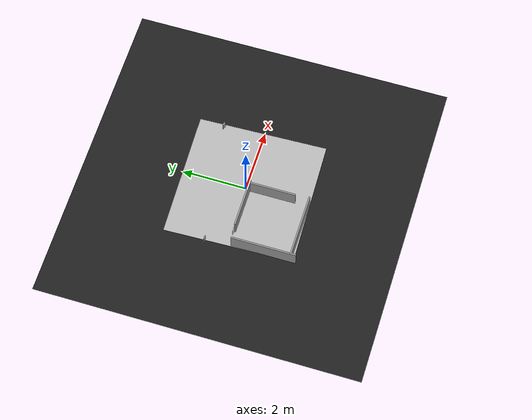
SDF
<sdf version="1.6">
 <world name="default">
  <scene>
   <ambient>0 0 0 1</ambient>
   <shadows>0</shadows>
   <grid>0</grid>
   <background>0.7 0.7 0.7 1</background>
  </scene>
  <model name="course">
   <static>1</static>
   <link name="course_link">
    <collision name="course_collision">
     <geometry><plane><normal>0 0 1</normal><size>4 4</size></plane></geometry>
     <surface><friction><ode><mu>100</mu><mu2>50</mu2></ode></friction></surface>
    </collision>
    <visual name="course_visual">
     <cast_shadows>0</cast_shadows>
     <geometry><plane><normal>0 0 1</normal><size>4 4</size></plane></geometry>
     <material>
      <script>
       <uri>model://turtlebot3_autorace/course/materials/scripts</uri>
       <uri>model://turtlebot3_autorace/course/materials/textures</uri>
       <name>course</name>
      </script>
     </material>
    </visual>
   </link>
   <pose>0 0 0 0 0 -1.54</pose>
  </model>
  <model name="traffic_parking">
   <static>1</static>
   <link name="box">
    <collision name="collision"><geometry><box><size>0.12 0.025 0.25</size></box></geometry></collision>
    <visual name="visual">
     <geometry><box><size>0.12 0.025 0.25</size></box></geometry>
     <material>
      <script>
       <uri>model://turtlebot3_autorace/traffic_parking/materials/scripts</uri>
       <uri>model://turtlebot3_autorace/traffic_parking/materials/textures</uri>
       <name>traffic_parking</name>
      </script>
     </material>
    </visual>
   </link>
   <pose>1.84 1.27 0.13 0 0 -0.356</pose>
  </model>
  <model name="traffic_stop">
   <static>1</static>
   <link name="box">
    <collision name="collision"><geometry><box><size>0.12 0.025 0.25</size></box></geometry></collision>
    <visual name="visual">
     <geometry><box><size>0.12 0.025 0.25</size></box></geometry>
     <material>
      <script>
       <uri>model://turtlebot3_autorace/traffic_stop/materials/scripts</uri>
       <uri>model://turtlebot3_autorace/traffic_stop/materials/textures</uri>
       <name>traffic_stop</name>
      </script>
     </material>
    </visual>
   </link>
   <pose>-2.05 0.65 0.125 0 -0 0</pose>
  </model>
  <light name="sun" type="directional">
   <pose>0 0 10 0 -0 0</pose>
   <diffuse>0.8 0.8 0.8 1</diffuse>
   <specular>0.1 0.1 0.1 1</specular>
   <attenuation>
    <range>1000</range>
    <constant>0.9</constant>
    <linear>0.01</linear>
    <quadratic>0.001</quadratic>
   </attenuation>
   <direction>-0.5 0.5 -1</direction>
  </light>
  <model name="ground2">
   <pose>0 0 -0.1 0 -0 0</pose>
   <static>1</static>
   <link name="ground">
    <collision name="ground_coll"><geometry><box><size>8 8 0.01</size></box></geometry></collision>
    <visual name="ground_vis">
     <geometry><box><size>10 10 0.01</size></box></geometry>
     <material>
      <script><uri>file://media/materials/scripts/gazebo.material</uri><name>Gazebo/FlatBlack</name></script>
     </material>
    </visual>
   </link>
  </model>
  <gravity>0 0 -9.8</gravity>
  <magnetic_field>6e-06 2.3e-05 -4.2e-05</magnetic_field>
  <atmosphere type="adiabatic"/>
  <physics name="default_physics" default="0" type="ode">
   <max_step_size>0.001</max_step_size>
   <real_time_factor>1</real_time_factor>
   <real_time_update_rate>1000</real_time_update_rate>
  </physics>
  <spherical_coordinates>
   <surface_model>EARTH_WGS84</surface_model>
   <latitude_deg>0</latitude_deg>
   <longitude_deg>0</longitude_deg>
   <elevation>0</elevation>
   <heading_deg>0</heading_deg>
  </spherical_coordinates>
  <light name="user_point_light_2" type="point">
   <pose>-0.948146 0.604519 1 0 -0 0</pose>
   <diffuse>0.5 0.5 0.5 1</diffuse>
   <specular>0.1 0.1 0.1 1</specular>
   <attenuation>
    <range>20</range>
    <constant>0.5</constant>
    <linear>0.01</linear>
    <quadratic>0.001</quadratic>
   </attenuation>
   <cast_shadows>0</cast_shadows>
   <direction>0 0 -1</direction>
  </light>
  <light name="user_point_light_6" type="point">
   <pose>1.63854 1.69565 1 0 -0 0</pose>
   <diffuse>0.5 0.5 0.5 1</diffuse>
   <specular>0.1 0.1 0.1 1</specular>
   <attenuation>
    <range>20</range>
    <constant>0.5</constant>
    <linear>0.01</linear>
    <quadratic>0.001</quadratic>
   </attenuation>
   <cast_shadows>0</cast_shadows>
   <direction>0 0 -1</direction>
  </light>
  <light name="user_point_light_7" type="point">
   <pose>0.42 -3.31 1 0 -0 0</pose>
   <diffuse>0.5 0.5 0.5 1</diffuse>
   <specular>0.1 0.1 0.1 1</specular>
   <attenuation>
    <range>20</range>
    <constant>0.5</constant>
    <linear>0.01</linear>
    <quadratic>0.001</quadratic>
   </attenuation>
   <cast_shadows>0</cast_shadows>
   <direction>0 0 -1</direction>
  </light>
  <light name="user_point_light_8" type="point">
   <pose>-1.8 1.5 1 0 -0 0</pose>
   <diffuse>0.5 0.5 0.5 1</diffuse>
   <specular>0.1 0.1 0.1 1</specular>
   <attenuation>
    <range>20</range>
    <constant>0.5</constant>
    <linear>0.01</linear>
    <quadratic>0.001</quadratic>
   </attenuation>
   <cast_shadows>0</cast_shadows>
   <direction>0 0 -1</direction>
  </light>
  <model name="tunnel_wall_3333">
   <link name="Wall_12">
    <pose>-0.980783 -0.1 0 0 -0 1.5708</pose>
    <inertial>
     <mass>1</mass>
     <inertia><ixx>1</ixx><ixy>0</ixy><ixz>0</ixz><iyy>1</iyy><iyz>0</iyz><izz>1</izz></inertia>
    </inertial>
    <visual name="Wall_12_Visual">
     <pose>0 0 0.25 0 -0 0</pose>
     <geometry><box><size>2 0.05 0.5</size></box></geometry>
     <material>
      <script><uri>file://media/materials/scripts/gazebo.material</uri><name>Gazebo/Grey</name></script>
      <ambient>1 1 1 1</ambient>
      <diffuse>0.7 0.7 0.7 1</diffuse>
      <specular>0.01 0.01 0.01 1</specular>
      <emissive>0 0 0 1</emissive>
      <shader type="vertex"><normal_map>__default__</normal_map></shader>
     </material>
    </visual>
    <collision name="Wall_12_Collision">
     <pose>0 0 0.25 0 -0 0</pose>
     <geometry><box><size>1.5 0.01 0.5</size></box></geometry>
     <surface>
      <friction>
       <ode><mu>1</mu><mu2>1</mu2><fdir1>0 0 0</fdir1><slip1>0</slip1><slip2>0</slip2></ode>
       <torsional>
        <coefficient>1</coefficient>
        <patch_radius>0</patch_radius>
        <surface_radius>0</surface_radius>
        <use_patch_radius>1</use_patch_radius>
        <ode><slip>0</slip></ode>
       </torsional>
      </friction>
      <bounce><restitution_coefficient>0</restitution_coefficient><threshold>1e+06</threshold></bounce>
      <contact>
       <collide_without_contact>0</collide_without_contact>
       <collide_without_contact_bitmask>1</collide_without_contact_bitmask>
       <collide_bitmask>1</collide_bitmask>
       <ode>
        <soft_cfm>0</soft_cfm>
        <soft_erp>0.2</soft_erp>
        <kp>1e+13</kp>
        <kd>1</kd>
        <max_vel>0.01</max_vel>
        <min_depth>0</min_depth>
       </ode>
       <bullet>
        <split_impulse>1</split_impulse>
        <split_impulse_penetration_threshold>-0.01</split_impulse_penetration_threshold>
        <soft_cfm>0</soft_cfm>
        <soft_erp>0.2</soft_erp>
        <kp>1e+13</kp>
        <kd>1</kd>
       </bullet>
      </contact>
     </surface>
    </collision>
   </link>
   <link name="Wall_14">
    <pose>0 -0.935438 0 0 -0 0</pose>
    <inertial>
     <mass>1</mass>
     <inertia><ixx>1</ixx><ixy>0</ixy><ixz>0</ixz><iyy>1</iyy><iyz>0</iyz><izz>1</izz></inertia>
    </inertial>
    <visual name="Wall_14_Visual">
     <pose>0 0 0.25 0 -0 0</pose>
     <geometry><box><size>2.00003 0.05 0.5</size></box></geometry>
     <material>
      <script><uri>file://media/materials/scripts/gazebo.material</uri><name>Gazebo/Grey</name></script>
      <ambient>1 1 1 1</ambient>
      <diffuse>0.7 0.7 0.7 1</diffuse>
      <specular>0.01 0.01 0.01 1</specular>
      <emissive>0 0 0 1</emissive>
      <shader type="vertex"><normal_map>__default__</normal_map></shader>
     </material>
    </visual>
    <collision name="Wall_14_Collision">
     <pose>0 0 0.25 0 -0 0</pose>
     <geometry><box><size>2.00003 0.01 0.5</size></box></geometry>
     <surface>
      <friction>
       <ode><mu>1</mu><mu2>1</mu2><fdir1>0 0 0</fdir1><slip1>0</slip1><slip2>0</slip2></ode>
       <torsional>
        <coefficient>1</coefficient>
        <patch_radius>0</patch_radius>
        <surface_radius>0</surface_radius>
        <use_patch_radius>1</use_patch_radius>
        <ode><slip>0</slip></ode>
       </torsional>
      </friction>
      <bounce><restitution_coefficient>0</restitution_coefficient><threshold>1e+06</threshold></bounce>
      <contact>
       <collide_without_contact>0</collide_without_contact>
       <collide_without_contact_bitmask>1</collide_without_contact_bitmask>
       <collide_bitmask>1</collide_bitmask>
       <ode>
        <soft_cfm>0</soft_cfm>
        <soft_erp>0.2</soft_erp>
        <kp>1e+13</kp>
        <kd>1</kd>
        <max_vel>0.01</max_vel>
        <min_depth>0</min_depth>
       </ode>
       <bullet>
        <split_impulse>1</split_impulse>
        <split_impulse_penetration_threshold>-0.01</split_impulse_penetration_threshold>
        <soft_cfm>0</soft_cfm>
        <soft_erp>0.2</soft_erp>
        <kp>1e+13</kp>
        <kd>1</kd>
       </bullet>
      </contact>
     </surface>
    </collision>
   </link>
   <link name="Wall_16">
    <pose>0.943396 0.25 0 0 -0 1.5708</pose>
    <inertial>
     <inertia><ixx>0</ixx><ixy>0</ixy><ixz>0</ixz><iyy>0</iyy><iyz>0</iyz><izz>0</izz></inertia>
     <mass>0</mass>
    </inertial>
    <visual name="Wall_16_Visual">
     <pose>0 0 0.25 0 -0 0</pose>
     <geometry><box><size>1.53699 0.05 0.5</size></box></geometry>
     <material>
      <script><uri>file://media/materials/scripts/gazebo.material</uri><name>Gazebo/Grey</name></script>
      <ambient>1 1 1 1</ambient>
      <diffuse>0.7 0.7 0.7 1</diffuse>
      <specular>0.01 0.01 0.01 1</specular>
      <emissive>0 0 0 1</emissive>
      <shader type="vertex"><normal_map>__default__</normal_map></shader>
     </material>
    </visual>
    <collision name="Wall_16_Collision">
     <pose>0 0 0.25 0 -0 0</pose>
     <geometry><box><size>1.15 0.01 0.5</size></box></geometry>
     <surface>
      <friction>
       <ode><mu>1</mu><mu2>1</mu2><fdir1>0 0 0</fdir1><slip1>0</slip1><slip2>0</slip2></ode>
       <torsional>
        <coefficient>1</coefficient>
        <patch_radius>0</patch_radius>
        <surface_radius>0</surface_radius>
        <use_patch_radius>1</use_patch_radius>
        <ode><slip>0</slip></ode>
       </torsional>
      </friction>
      <bounce><restitution_coefficient>0</restitution_coefficient><threshold>1e+06</threshold></bounce>
      <contact>
       <collide_without_contact>0</collide_without_contact>
       <collide_without_contact_bitmask>1</collide_without_contact_bitmask>
       <collide_bitmask>1</collide_bitmask>
       <ode>
        <soft_cfm>0</soft_cfm>
        <soft_erp>0.2</soft_erp>
        <kp>1e+13</kp>
        <kd>1</kd>
        <max_vel>0.01</max_vel>
        <min_depth>0</min_depth>
       </ode>
       <bullet>
        <split_impulse>1</split_impulse>
        <split_impulse_penetration_threshold>-0.01</split_impulse_penetration_threshold>
        <soft_cfm>0</soft_cfm>
        <soft_erp>0.2</soft_erp>
        <kp>1e+13</kp>
        <kd>1</kd>
       </bullet>
      </contact>
     </surface>
    </collision>
   </link>
   <link name="Wall_17">
    <pose>0.25 0.915 0 0 -0 3.14159</pose>
    <inertial>
     <mass>1</mass>
     <inertia><ixx>1</ixx><ixy>0</ixy><ixz>0</ixz><iyy>1</iyy><iyz>0</iyz><izz>1</izz></inertia>
    </inertial>
    <visual name="Wall_17_Visual">
     <pose>0 0 0.25 0 -0 0</pose>
     <geometry><box><size>1.58 0.05 0.5</size></box></geometry>
     <material>
      <script><uri>file://media/materials/scripts/gazebo.material</uri><name>Gazebo/Grey</name></script>
      <ambient>1 1 1 1</ambient>
      <diffuse>0.7 0.7 0.7 1</diffuse>
      <specular>0.01 0.01 0.01 1</specular>
      <emissive>0 0 0 1</emissive>
      <shader type="vertex"><normal_map>__default__</normal_map></shader>
     </material>
    </visual>
    <collision name="Wall_17_Collision">
     <pose>0 0 0.25 0 -0 0</pose>
     <geometry><box><size>1.15 0.01 0.5</size></box></geometry>
     <surface>
      <friction>
       <ode><mu>1</mu><mu2>1</mu2><fdir1>0 0 0</fdir1><slip1>0</slip1><slip2>0</slip2></ode>
       <torsional>
        <coefficient>1</coefficient>
        <patch_radius>0</patch_radius>
        <surface_radius>0</surface_radius>
        <use_patch_radius>1</use_patch_radius>
        <ode><slip>0</slip></ode>
       </torsional>
      </friction>
      <bounce><restitution_coefficient>0</restitution_coefficient><threshold>1e+06</threshold></bounce>
      <contact>
       <collide_without_contact>0</collide_without_contact>
       <collide_without_contact_bitmask>1</collide_without_contact_bitmask>
       <collide_bitmask>1</collide_bitmask>
       <ode>
        <soft_cfm>0</soft_cfm>
        <soft_erp>0.2</soft_erp>
        <kp>1e+13</kp>
        <kd>1</kd>
        <max_vel>0.01</max_vel>
        <min_depth>0</min_depth>
       </ode>
       <bullet>
        <split_impulse>1</split_impulse>
        <split_impulse_penetration_threshold>-0.01</split_impulse_penetration_threshold>
        <soft_cfm>0</soft_cfm>
        <soft_erp>0.2</soft_erp>
        <kp>1e+13</kp>
        <kd>1</kd>
       </bullet>
      </contact>
     </surface>
    </collision>
   </link>
   <static>1</static>
   <pose>-0.964697 -1.03574 0 0 -0 0</pose>
  </model>
  <model name="traffic_tunnel3333">
   <link name="box">
    <inertial>
     <inertia><ixx>1</ixx><ixy>0</ixy><ixz>0</ixz><iyy>1</iyy><iyz>0</iyz><izz>1</izz></inertia>
     <mass>1</mass>
    </inertial>
    <visual name="visual">
     <geometry><box><size>0.12 0.025 0.25</size></box></geometry>
     <material>
      <script>
       <uri>model://turtlebot3_autorace/traffic_tunnel/materials/scripts</uri>
       <uri>model://turtlebot3_autorace/traffic_tunnel/materials/textures</uri>
       <name>traffic_tunnel</name>
      </script>
      <ambient>1 1 1 1</ambient>
      <diffuse>1 1 1 1</diffuse>
      <specular>0 0 0 1</specular>
      <emissive>0 0 0 1</emissive>
      <shader type="vertex"><normal_map>__default__</normal_map></shader>
     </material>
    </visual>
    <collision name="collision">
     <geometry><box><size>0.01 0.01 0.25</size></box></geometry>
     <surface>
      <friction>
       <ode><mu>1</mu><mu2>1</mu2><fdir1>0 0 0</fdir1><slip1>0</slip1><slip2>0</slip2></ode>
       <torsional>
        <coefficient>1</coefficient>
        <patch_radius>0</patch_radius>
        <surface_radius>0</surface_radius>
        <use_patch_radius>1</use_patch_radius>
        <ode><slip>0</slip></ode>
       </torsional>
      </friction>
      <bounce><restitution_coefficient>0</restitution_coefficient><threshold>1e+06</threshold></bounce>
      <contact>
       <collide_without_contact>0</collide_without_contact>
       <collide_without_contact_bitmask>1</collide_without_contact_bitmask>
       <collide_bitmask>1</collide_bitmask>
       <ode>
        <soft_cfm>0</soft_cfm>
        <soft_erp>0.2</soft_erp>
        <kp>1e+13</kp>
        <kd>1</kd>
        <max_vel>0.01</max_vel>
        <min_depth>0</min_depth>
       </ode>
       <bullet>
        <split_impulse>1</split_impulse>
        <split_impulse_penetration_threshold>-0.01</split_impulse_penetration_threshold>
        <soft_cfm>0</soft_cfm>
        <soft_erp>0.2</soft_erp>
        <kp>1e+13</kp>
        <kd>1</kd>
       </bullet>
      </contact>
     </surface>
    </collision>
   </link>
   <static>0</static>
   <pose>-1.544 -0.08 0.125 -0 4e-06 2e-06</pose>
  </model>
 </world>
</sdf>
